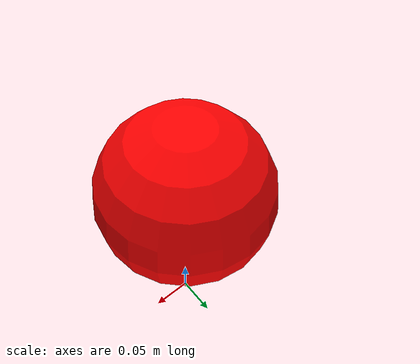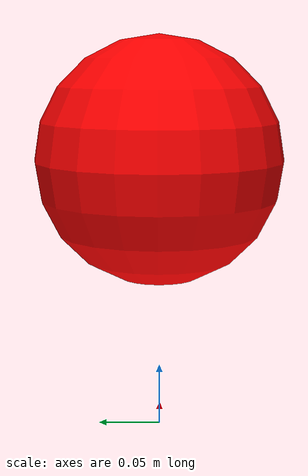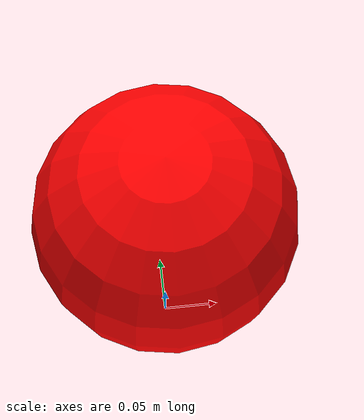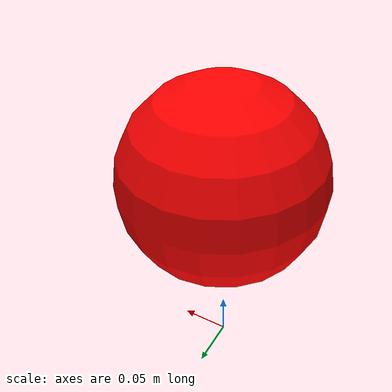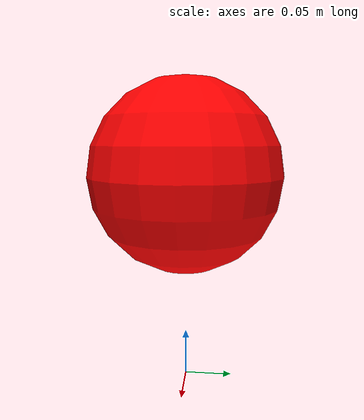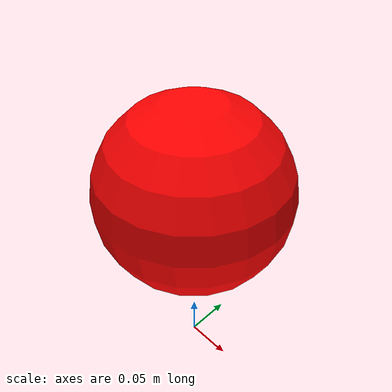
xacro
<?xml version="1.0"?>
<robot name="moving_sphere" xmlns:xacro="http://www.ros.org/wiki/xacro">

  <!-- Define the world link -->
  <link name="world"/>

  <!-- Link for the sphere -->
  <link name="sphere_link">
    <visual>
      <geometry>
        <sphere radius="0.1"/>
      </geometry>
      <material name="red">
        <color rgba="1 0 0 1"/>
      </material>
    </visual>
    <collision>
      <geometry>
        <sphere radius="0.1"/>
      </geometry>
    </collision>
    <inertial>
      <mass value="1.0"/>
      <origin xyz="0 0 0" rpy="0 0 0"/>
      <inertia ixx="1" ixy="0" ixz="0" iyy="1" iyz="0" izz="1"/>
    </inertial>
  </link>

  <!-- Joint to allow the sphere to roll -->
  <joint name="base_joint" type="planar">
    <parent link="world"/>
    <child link="sphere_link"/>
    <origin xyz="0 0 0.22" rpy="0 0 0"/>
  </joint>

  <gazebo reference="sphere_link">
    <material>Gazebo/Red</material>
  </gazebo>

  <!-- Plugin for ROS control -->
  <gazebo>
    <plugin name="sphere_controller" filename="libgazebo_ros_planar_move.so">
      <ros>
        <namespace>/moving_sphere</namespace>
        <remapping>cmd_vel:=cmd_vel</remapping>
        <remapping>odom:=sphere_odom</remapping>
      </ros>
      <update_rate>100</update_rate>
      <!-- Set odom publish rate -->
      <publish_rate>10</publish_rate>
      <publish_odom>true</publish_odom>
      <odom_frame>sphere_link</odom_frame>
      <robot_base_frame>world</robot_base_frame>
      <covariance_x>0.0001</covariance_x>
      <covariance_y>0.0001</covariance_y>
      <covariance_yaw>0.01</covariance_yaw>
    </plugin>
  </gazebo>

</robot>
